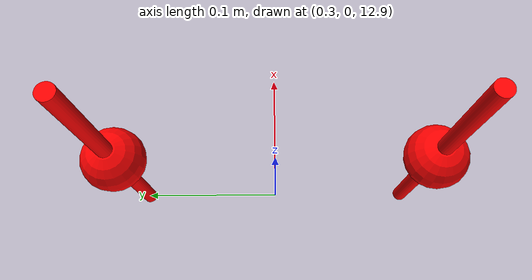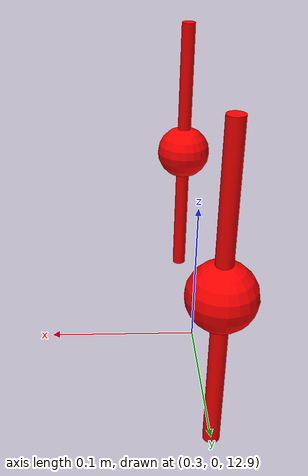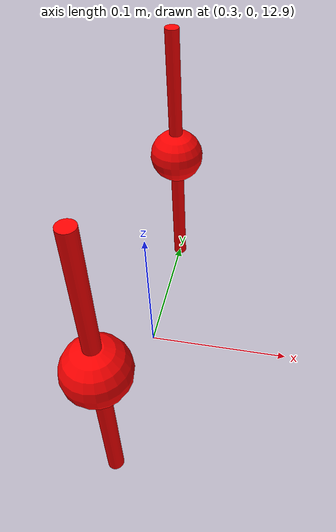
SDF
<?xml version="1.0" ?>
<sdf version="1.4">
  <!-- We use a custom world for the rrbot so that the camera angle is launched correctly -->

  <world name="default">
    <include>
      <uri>model://ground_plane</uri>
    </include>

    <!-- Global light source -->
    <include>
      <uri>model://sun</uri>
    </include>

    <physics type='ode'>
      <max_step_size>0.001</max_step_size>
      <real_time_factor>0.1</real_time_factor>
      <real_time_update_rate>1000</real_time_update_rate>
      <gravity>0 0 -9.8</gravity>
    </physics>

    <model name="/right_arm">
      <pose>0.3 0.1 13  0 0 0</pose>
      <static>false</static>
      <link name="/right_arm">
        <visual name="visual">
          <pose>0 0 0 0 0 0</pose>
          <geometry>
            <sphere>
              <radius>0.02</radius>
            </sphere>
          </geometry>
          <material><ambient>1 0 0 1</ambient></material>
        </visual>
      </link>
    </model>

    <model name="/left_arm">
      <pose>0.3 -0.1 13  0 0 0</pose>
      <static>false</static>
      <link name="/left_arm">
        <visual name="visual">
          <pose>0 0 0 0 0 0</pose>
          <geometry>
            <sphere>
              <radius>0.02</radius>
            </sphere>
          </geometry>
          <material><ambient>1 0 0 1</ambient></material>
        </visual>
      </link>
    </model>

    <model name="/right_qarm">
      <pose>0.3 0.1 13  0 0 0</pose>
      <static>false</static>
      <link name="/left_arm">
        <visual name="visual">
          <pose>0 0 0 0 0 0</pose>
          <geometry>
            <cylinder>
              <radius>0.005</radius>
              <length>0.2</length>
            </cylinder>
          </geometry>
          <material><ambient>1 0 0 1</ambient></material>
        </visual>
      </link>
    </model>

    <model name="/left_qarm">
      <pose>0.3 -0.1 13  0 0 0</pose>
      <static>false</static>
      <link name="/left_arm">
        <visual name="visual">
          <pose>0 0 0 0 0 0</pose>
          <geometry>
            <cylinder>
              <radius>0.005</radius>
              <length>0.2</length>
            </cylinder>
          </geometry>
          <material>
            <ambient>1 0 0 1</ambient>
          </material>
        </visual>
      </link>
    </model>

    <!-- Focus camera on tall pendulum -->
    <gui fullscreen='0'>
      <camera name='user_camera'>
        <pose>4.927360 -4.376610 3.740080 0.000000 0.275643 2.356190</pose>
        <view_controller>orbit</view_controller>
      </camera>
    </gui>

  </world>
</sdf>
